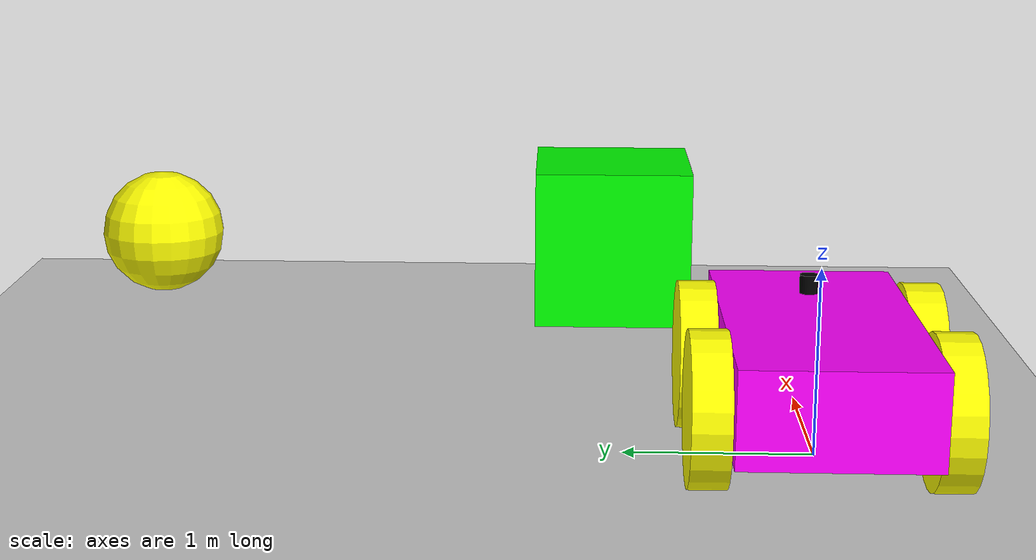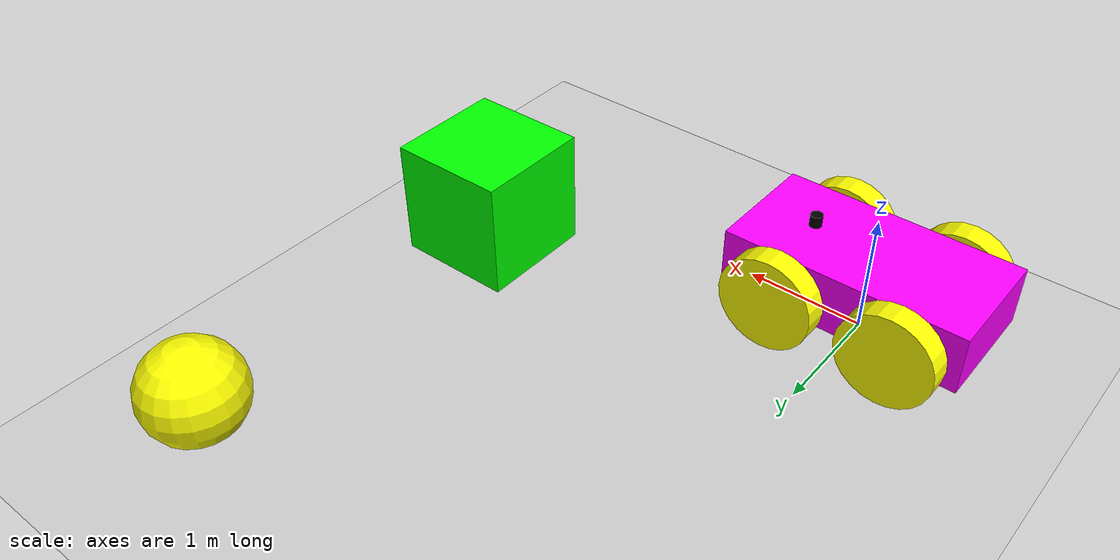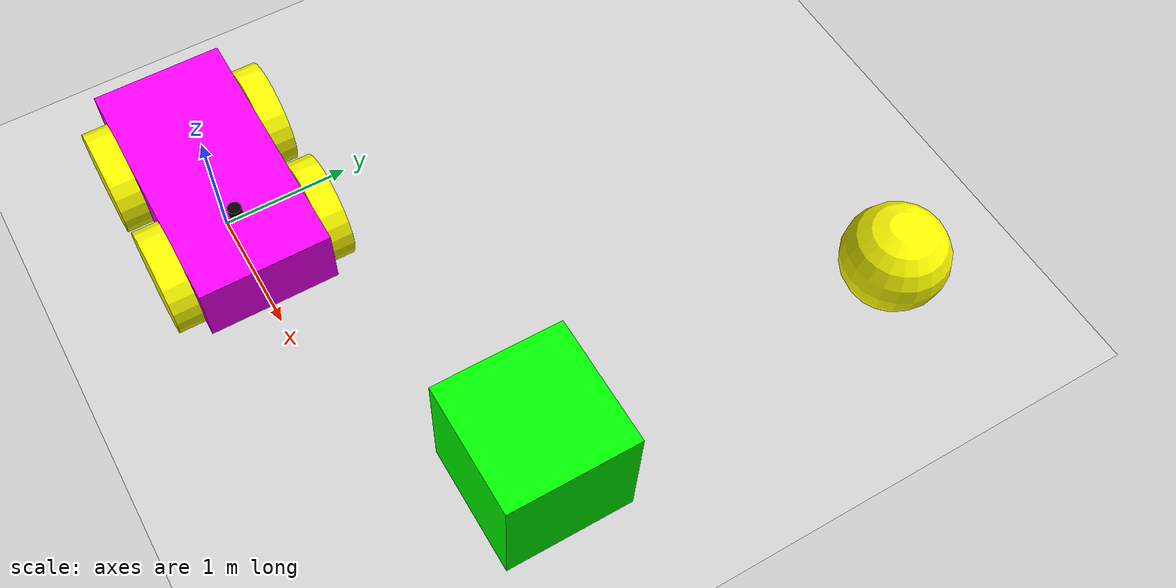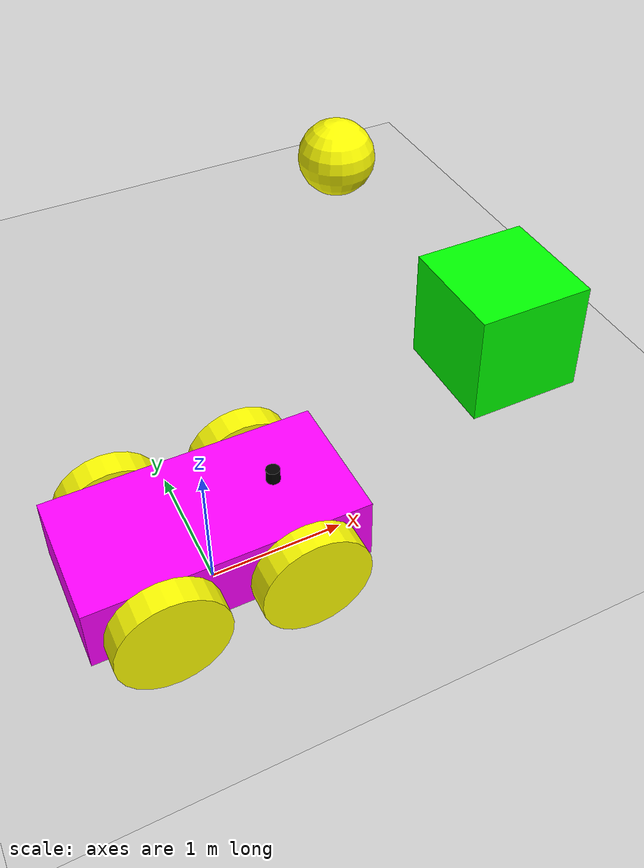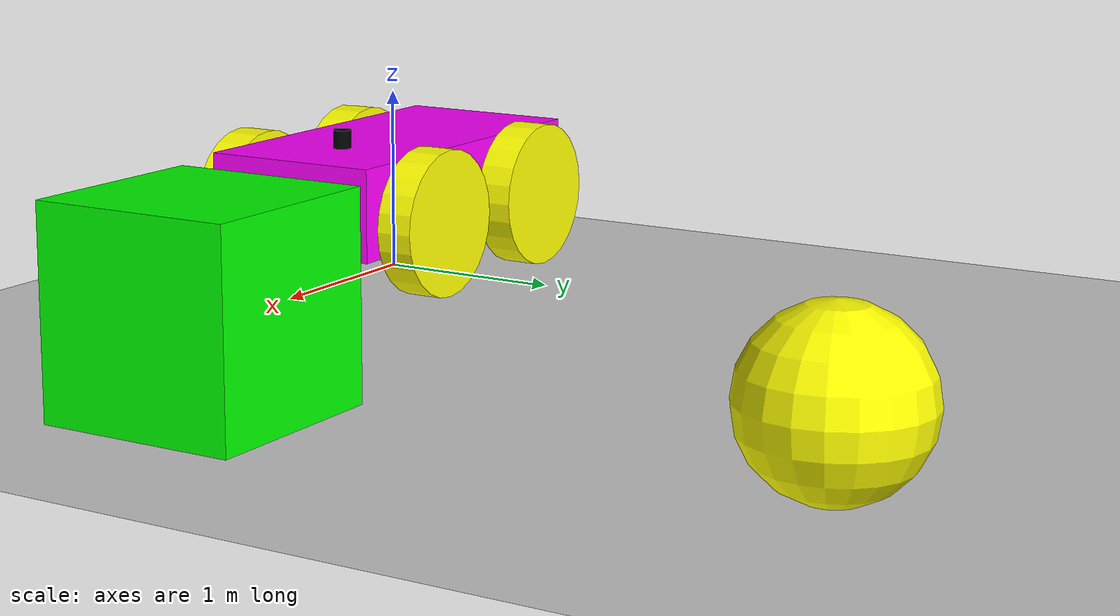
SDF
<?xml version="1.0" ?>
<sdf version="1.8">
    <world name="world_training">
        <physics name="1ms" type="ignored">
            <max_step_size>0.001</max_step_size>
            <real_time_factor>1.0</real_time_factor>
        </physics>
        <plugin filename="gz-sim-physics-system" name="gz::sim::systems::Physics"></plugin>
        <plugin filename="gz-sim-user-commands-system" name="gz::sim::systems::UserCommands"></plugin>
        <plugin filename="gz-sim-scene-broadcaster-system" name="gz::sim::systems::SceneBroadcaster"></plugin>
        <plugin filename="gz-sim-sensors-system" name="gz::sim::systems::Sensors">
            <render_engine>ogre2</render_engine>
        </plugin>

        <gui fullscreen="0">
            <plugin filename="MinimalScene" name="3D View">
                <gz-gui>
                    <title>3D View</title>
                    <property type="bool" key="showTitleBar">false</property>
                    <property type="string" key="state">docked</property>
                </gz-gui>
                <engine>ogre2</engine>
                <scene>scene</scene>
                <ambient_light>0.4 0.4 0.4</ambient_light>
                <background_color>0.8 0.8 0.8</background_color>
                <camera_pose>-6 0 6 0 0.5 0</camera_pose>
                <camera_clip>
                    <near>0.25</near>
                    <far>25000</far>
                </camera_clip>
            </plugin>

            <plugin filename="GzSceneManager" name="Scene Manager">
                <gz-gui>
                    <property key="resizable" type="bool">false</property>
                    <property key="width" type="double">5</property>
                    <property key="height" type="double">5</property>
                    <property key="state" type="string">floating</property>
                    <property key="showTitleBar" type="bool">false</property>
                </gz-gui>
            </plugin>

            <plugin filename="WorldControl" name="World Control">
                <gz-gui>
                    <title>World Control</title>
                    <property type="bool" key="showTitleBar">false</property>
                    <property type="bool" key="resizable">false</property>
                    <property type="double" key="width">161</property>
                    <property type="double" key="height">72</property>
                    <property type="double" key="z">1</property>
                    <property type="string" key="state">floating</property>
                    <anchors target="3D View">
                        <line own="left" target="left"/>
                        <line own="bottom" target="bottom"/>
                    </anchors>
                </gz-gui>
                <play_pause>true</play_pause>
                <step>true</step>
                <start_paused>true</start_paused>
                <service>/world/world_training/control</service>
                <stats_topic>/world/world_training/stats</stats_topic>
            </plugin>

            <plugin filename="WorldStats" name="World Stats">
                <gz-gui>
                    <title>World Stats</title>
                    <property type="bool" key="showTitleBar">false</property>
                    <property type="bool" key="resizable">false</property>
                    <property type="double" key="height">110</property>
                    <property type="double" key="width">290</property>
                    <property type="double" key="z">1</property>
                    <property type="string" key="state">floating</property>
                    <anchors target="3D View">
                        <line own="right" target="right"/>
                        <line own="bottom" target="bottom"/>
                    </anchors>
                </gz-gui>
                <sim_time>true</sim_time>
                <real_time>true</real_time>
                <real_time_factor>true</real_time_factor>
                <iterations>true</iterations>
                <topic>/world/world_training/stats</topic>
            </plugin>

            <plugin filename="EntityTree" name="Entity tree"></plugin>
            <plugin filename="InteractiveViewControl" name="Interactive View Control">
                <gz-gui>
                    <property key="resizable" type="bool">false</property>
                    <property key="width" type="double">5</property>
                    <property key="height" type="double">5</property>
                    <property key="state" type="string">floating</property>
                    <property key="showTitleBar" type="bool">false</property>
                </gz-gui>
            </plugin>
        </gui>

        <light type="directional" name="sun">
            <cast_shadows>true</cast_shadows>
            <pose>0 0 10 0 0 0</pose>
            <diffuse>0.8 0.8 0.8 1</diffuse>
            <specular>0.2 0.2 0.2 1</specular>
            <attenuation>
                <range>1000</range>
                <constant>0.9</constant>
                <linear>0.01</linear>
                <quadratic>0.001</quadratic>
            </attenuation>
            <direction>-0.5 0.1 -0.9</direction>
        </light>

        <model name="ground_plane">
            <static>true</static>
            <link name="link">
                <collision name="collision">
                    <geometry>
                        <plane>
                            <normal>0 0 1</normal>
                        </plane>
                    </geometry>
                </collision>
                <visual name="visual">
                    <geometry>
                        <plane>
                            <normal>0 0 1</normal>
                            <size>100 100</size>
                        </plane>
                    </geometry>
                    <material>
                        <ambient>0.8 0.8 0.8 1</ambient>
                        <diffuse>0.8 0.8 0.8 1</diffuse>
                        <specular>0.8 0.8 0.8 1</specular>
                    </material>
                </visual>
            </link>
        </model>

        <model name='box_obstacle'>
            <pose>3 1 0.5 0 0 0</pose>
            <link name='link'>
                <collision name='c1'>
                    <geometry>
                        <box>
                            <size>1 1 1</size>
                        </box>
                    </geometry>
                </collision>
                <visual name='v1'>
                    <geometry>
                        <box>
                            <size>1 1 1</size>
                        </box>
                    </geometry>
                    <material>
                        <ambient>0 1 0 1</ambient>
                        <diffuse>0 1 0 1</diffuse>
                    </material>
                </visual>
            </link>
        </model>

        <model name='sphere_obstacle'>
            <pose>3 4 0.5 0 0 0</pose>
            <link name='link'>
                <collision name='c2'>
                    <geometry>
                        <sphere>
                            <radius>0.4</radius>
                        </sphere>
                    </geometry>
                </collision>
                <visual name='v2'>
                    <geometry>
                         <sphere>
                            <radius>0.4</radius>
                        </sphere>
                    </geometry>
                    <material>
                        <ambient>1 1 0 1</ambient>
                        <diffuse>1 1 0 1</diffuse>
                    </material>
                </visual>
            </link>
        </model>

        <model name='simple_robot' canonical_link='chassis'>
            <pose relative_to='world'>0 0 0.5 0 0 0</pose>

            <link name='chassis'>
                <pose relative_to='__model__'>0 0 0 0 0 0</pose>
                <inertial>
                    <mass>1.2</mass>
                    <inertia>
                        <ixx>0.1</ixx>
                        <ixy>0</ixy>
                        <ixz>0</ixz>
                        <iyy>0.4</iyy>
                        <iyz>0</iyz>
                        <izz>0.5</izz>
                    </inertia>
                </inertial>

                <visual name='visual_chassis'>
                    <geometry>
                        <box>
                            <size>2.0 1.0 0.5</size>
                        </box>
                    </geometry>
                    <material>
                        <ambient>0 0.0 1.0 1</ambient>
                        <diffuse>1.0 0.0 1.0 1</diffuse>
                    </material>
                </visual>

                <collision name='collision_chassis'>
                    <geometry>
                        <box>
                            <size>2.0 1.0 0.5</size>
                        </box>
                    </geometry>
                </collision>
            </link>

            <link name='front_left_wheel'>
                <pose relative_to="chassis">0.5 0.6 -0.1 -1.5707 0 0</pose>

                <inertial>
                    <mass>0.5</mass>
                    <inertia>
                        <ixx>0.04</ixx>
                        <ixy>0</ixy>
                        <ixz>0</ixz>
                        <iyy>0.04</iyy>
                        <iyz>0</iyz>
                        <izz>0.08</izz>
                    </inertia>
                </inertial>

                <visual name='visual_wheel'>
                    <geometry>
                        <cylinder>
                            <radius>0.4</radius>
                            <length>0.2</length>
                        </cylinder>
                    </geometry>
                    <material>
                        <ambient>1.0 1.0 0.0 1</ambient>
                        <diffuse>1.0 1.0 0.0 1</diffuse>
                    </material>
                </visual>

                <collision name='collision_wheel'>
                    <geometry>
                        <cylinder>
                            <radius>0.4</radius>
                            <length>0.2</length>
                        </cylinder>
                    </geometry>
                </collision>
            </link>

            <link name='rear_left_wheel'>
                <pose relative_to="chassis">-0.5 0.6 -0.1 -1.5707 0 0</pose>

                <inertial>
                    <mass>0.5</mass>
                    <inertia>
                        <ixx>0.04</ixx>
                        <ixy>0</ixy>
                        <ixz>0</ixz>
                        <iyy>0.04</iyy>
                        <iyz>0</iyz>
                        <izz>0.08</izz>
                    </inertia>
                </inertial>

                <visual name='visual_wheel'>
                    <geometry>
                        <cylinder>
                            <radius>0.4</radius>
                            <length>0.2</length>
                        </cylinder>
                    </geometry>
                    <material>
                        <ambient>1.0 1.0 0.0 1</ambient>
                        <diffuse>1.0 1.0 0.0 1</diffuse>
                    </material>
                </visual>

                <collision name='collision_wheel'>
                    <geometry>
                        <cylinder>
                            <radius>0.4</radius>
                            <length>0.2</length>
                        </cylinder>
                    </geometry>
                </collision>
            </link>

            <link name='rear_right_wheel'>
                <pose relative_to="chassis">-0.5 -0.6 -0.1 -1.5707 0 0</pose>

                <inertial>
                    <mass>0.5</mass>
                    <inertia>
                        <ixx>0.04</ixx>
                        <ixy>0</ixy>
                        <ixz>0</ixz>
                        <iyy>0.04</iyy>
                        <iyz>0</iyz>
                        <izz>0.08</izz>
                    </inertia>
                </inertial>

                <visual name='visual_wheel'>
                    <geometry>
                        <cylinder>
                            <radius>0.4</radius>
                            <length>0.2</length>
                        </cylinder>
                    </geometry>
                    <material>
                        <ambient>1.0 1.0 0.0 1</ambient>
                        <diffuse>1.0 1.0 0.0 1</diffuse>
                    </material>
                </visual>

                <collision name='collision_wheel'>
                    <geometry>
                        <cylinder>
                            <radius>0.4</radius>
                            <length>0.2</length>
                        </cylinder>
                    </geometry>
                </collision>
            </link>

            <link name='front_right_wheel'>
                <pose relative_to="chassis">0.5 -0.6 -0.1 -1.5707 0 0</pose>

                <inertial>
                    <mass>0.5</mass>
                    <inertia>
                        <ixx>0.04</ixx>
                        <ixy>0</ixy>
                        <ixz>0</ixz>
                        <iyy>0.04</iyy>
                        <iyz>0</iyz>
                        <izz>0.08</izz>
                    </inertia>
                </inertial>

                <visual name='visual_wheel'>
                    <geometry>
                        <cylinder>
                            <radius>0.4</radius>
                            <length>0.2</length>
                        </cylinder>
                    </geometry>
                    <material>
                        <ambient>1.0 1.0 0.0 1</ambient>
                        <diffuse>1.0 1.0 0.0 1</diffuse>
                    </material>
                </visual>

                <collision name='collision_wheel'>
                    <geometry>
                        <cylinder>
                            <radius>0.4</radius>
                            <length>0.2</length>
                        </cylinder>
                    </geometry>
                </collision>
            </link>

            <link name='lidar_link'>
                <pose relative_to='chassis'>0.5 0 0.3 0 0 0</pose>

                <inertial>
                    <mass>0.1</mass>
                    <inertia>
                        <ixx>0.000166667</ixx>
                        <iyy>0.000166667</iyy>
                        <izz>0.000166667</izz>
                    </inertia>
                </inertial>

                <visual name='visual'>
                    <geometry>
                        <cylinder>
                            <radius>0.05</radius>
                            <length>0.1</length>
                        </cylinder>
                    </geometry>
                    <material>
                        <ambient>0 0 0 1</ambient>
                        <diffuse>0 0 0 1</diffuse>
                    </material>
                </visual>

                <collision name='collision'>
                    <geometry>
                        <cylinder>
                            <radius>0.05</radius>
                            <length>0.1</length>
                        </cylinder>
                    </geometry>
                </collision>

                <sensor name='gpu_lidar' type='gpu_lidar'>
                    <pose relative_to='lidar_link'>0 0 0 0 0 0</pose>
                    <topic>lidar</topic>
                    <update_rate>10</update_rate>
                    <ray>
                        <scan>
                            <horizontal>
                                <samples>640</samples>
                                <resolution>1</resolution>
                                <min_angle>-0.78</min_angle>
                                <max_angle>0.78</max_angle>
                            </horizontal>
                            <vertical>
                                <samples>1</samples>
                                <min_angle>0</min_angle>
                                <max_angle>0</max_angle>
                            </vertical>
                        </scan>
                        <range>
                            <min>0.08</min>
                            <max>10.0</max>
                        </range>
                    </ray>
                    <always_on>1</always_on>
                    <visualize>true</visualize>
                </sensor>
            </link>

            <joint name='front_left_wheel_joint' type='revolute'>
                <pose relative_to="front_left_wheel"/>
                <parent>chassis</parent>
                <child>front_left_wheel</child>
                <axis>
                    <xyz expressed_in='__model__'>0 1 0</xyz>
                    <limit>
                        <lower>-1.79769e+308</lower>
                        <upper>1.79769e+308</upper>
                    </limit>
                </axis>
            </joint>

            <joint name='rear_left_wheel_joint' type='revolute'>
                <pose relative_to="rear_left_wheel"/>
                <parent>chassis</parent>
                <child>rear_left_wheel</child>
                <axis>
                    <xyz expressed_in='__model__'>0 1 0</xyz>
                    <limit>
                        <lower>-1.79769e+308</lower>
                        <upper>1.79769e+308</upper>
                    </limit>
                </axis>
            </joint>

            <joint name='front_right_wheel_joint' type='revolute'>
                <pose relative_to="front_right_wheel"/>
                <parent>chassis</parent>
                <child>front_right_wheel</child>
                <axis>
                    <xyz expressed_in='__model__'>0 1 0</xyz>
                    <limit>
                        <lower>-1.79769e+308</lower>
                        <upper>1.79769e+308</upper>
                    </limit>
                </axis>
            </joint>

            <joint name='rear_right_wheel_joint' type='revolute'>
                <pose relative_to="rear_right_wheel"/>
                <parent>chassis</parent>
                <child>rear_right_wheel</child>
                <axis>
                    <xyz expressed_in='__model__'>0 1 0</xyz>
                    <limit>
                        <lower>-1.79769e+308</lower>
                        <upper>1.79769e+308</upper>
                    </limit>
                </axis>
            </joint>

            <joint name='lidar_joint' type='fixed'>
                <parent>chassis</parent>
                <child>lidar_link</child>
            </joint>

            <plugin filename="gz-sim-diff-drive-system" name="gz::sim::systems::DiffDrive">
                <left_joint>front_left_wheel_joint</left_joint>
                <left_joint>rear_left_wheel_joint</left_joint>
                <right_joint>front_right_wheel_joint</right_joint>
                <right_joint>rear_right_wheel_joint</right_joint>

                <wheel_separation>1.2</wheel_separation>
                <wheel_radius>0.4</wheel_radius>
                <odom_publish_frequency>1</odom_publish_frequency>
                <topic>cmd_vel</topic>
            </plugin>

            <plugin filename="gz-sim-triggered-publisher-system" name="gz::sim::systems::TriggeredPublisher">
                <input type="gz.msgs.Int32" topic="/keyboard/keypress">
                    <match field="data">16777235</match>
                </input>
                <output type="gz.msgs.Twist" topic="/cmd_vel">
                    linear: {x: 2.0}, angular: {z: 0.0}
                </output>
            </plugin>

            <plugin filename="gz-sim-triggered-publisher-system" name="gz::sim::systems::TriggeredPublisher">
                <input type="gz.msgs.Int32" topic="/keyboard/keypress">
                    <match field="data">16777237</match>
                </input>
                <output type="gz.msgs.Twist" topic="/cmd_vel">
                    linear: {x: -2.0}, angular: {z: 0.0}
                </output>
            </plugin>

            <plugin filename="gz-sim-triggered-publisher-system" name="gz::sim::systems::TriggeredPublisher">
                <input type="gz.msgs.Int32" topic="/keyboard/keypress">
                    <match field="data">16777234</match>
                </input>
                <output type="gz.msgs.Twist" topic="/cmd_vel">
                    linear: {x: 0.0}, angular: {z: 1.0}
                </output>
            </plugin>

            <plugin filename="gz-sim-triggered-publisher-system" name="gz::sim::systems::TriggeredPublisher">
                <input type="gz.msgs.Int32" topic="/keyboard/keypress">
                    <match field="data">16777236</match>
                </input>
                <output type="gz.msgs.Twist" topic="/cmd_vel">
                    linear: {x: 0.0}, angular: {z: -1.0}
                </output>
            </plugin>

        </model>

    </world>
</sdf>
